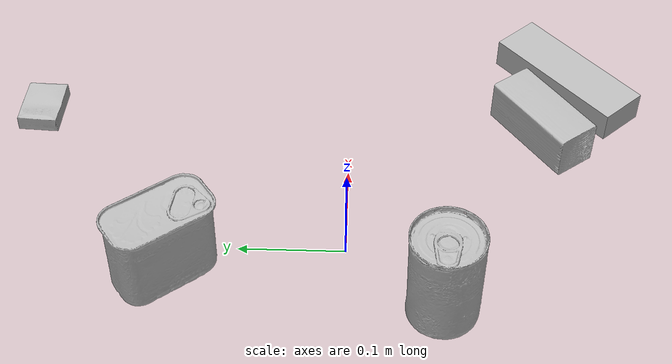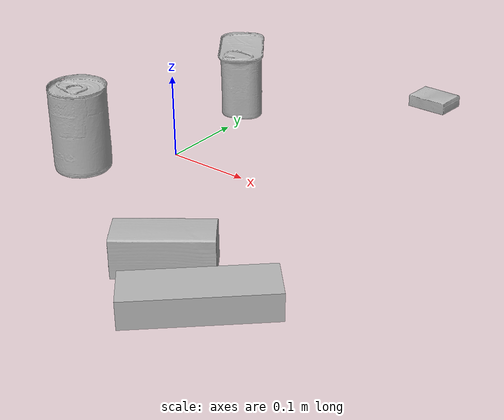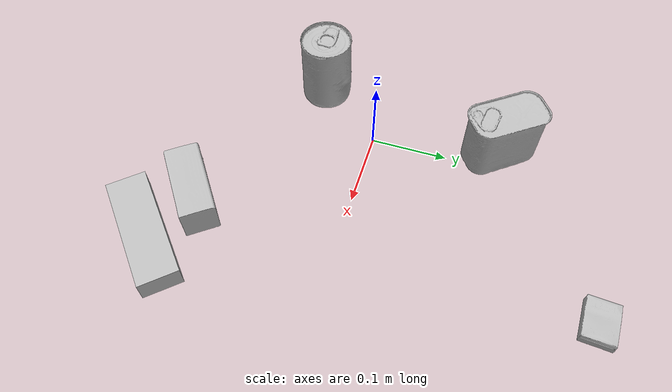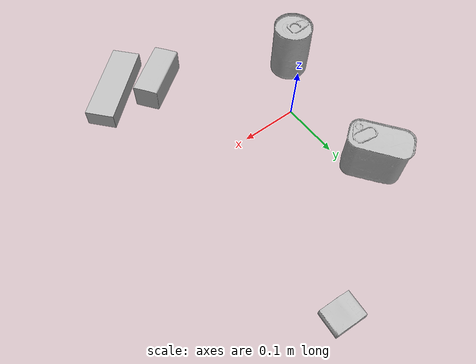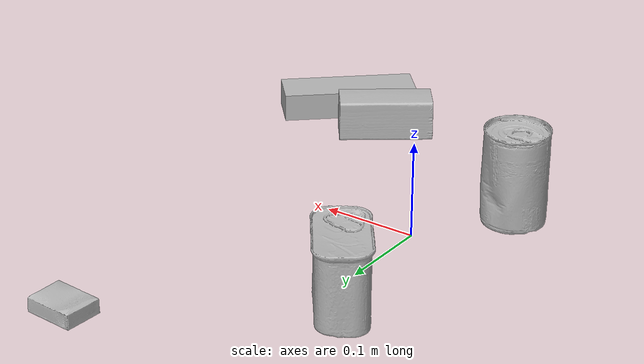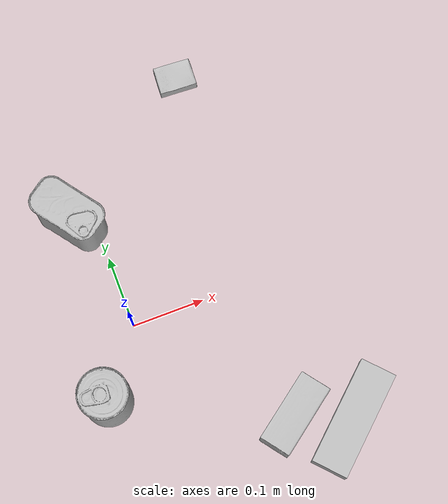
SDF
<sdf version="1.4">
  <world name="default">
    <light name="light1" type="point">
      <pose>0 0 1 0 0 0</pose>
      <diffuse>3 3 3 1</diffuse>
      <specular>3 3 3 1</specular>
    </light>
    <light name="light2" type="point">
      <pose>0 0.5 2 0 0 0</pose>
      <diffuse>1 1 1 1</diffuse>
      <specular>1 1 1 1</specular>
    </light>
    <light name="light3" type="point">
      <pose>0 0.5 2 0 0 0</pose>
      <diffuse>3 3 3 1</diffuse>
      <specular>3 3 3 1</specular>
    </light>
    <scene>
      <ambient>0.7 0.7 0.7</ambient>
    </scene>
    <model name="box1">
      <link name="link_box1">
        <collision name="default">
          <geometry>
            <mesh>
              <uri>model://jenga/collision_meshes/collision.obj</uri>
              <scale>1.0 1.0 1.0</scale>
            </mesh>
          </geometry>
          <surface>
            <friction>
              <ode>
                <mu>0.5</mu>
                <mu2>0.5</mu2>
              </ode>
            </friction>
          <contact>
        <ode>
            <max_vel>0</max_vel>
            <min_depth>0.0001</min_depth>
            <kp>1e8</kp>
        </ode>
    </contact></surface>
        </collision>
        <visual name="default">
          <geometry>
            <mesh>
              <uri>model://jenga/visual_meshes/visual.dae</uri>
              <scale>1.0 1.0 1.0</scale>
            </mesh>
          </geometry>
        </visual>
        <inertial>
          <mass>0.13349448144435883</mass>
          <pose>-2.502855807051674e-07 -0.00010250010382151231 -4.0923401684267446e-05 0.0 -7.342153480750062e-07 0.0</pose>
          <inertia>
            <ixx>3.694116e-05</ixx>
            <iyy>0.0002503123</iyy>
            <izz>0.00026722968</izz>
            <ixy>0</ixy>
            <ixz>0</ixz>
            <iyz>0</iyz>
          </inertia>
        </inertial>
      </link>
      <pose>0.22859710454940796 -0.22303538024425507 0.01499999687075615 -6.8426810915812135e-09 2.970616779368064e-09 -2.4045569325482594</pose>
    </model>
    <model name="box2">
      <link name="link_box2">
        <collision name="default">
          <geometry>
            <mesh>
              <uri>model://cracker_box/collision_meshes/collision.obj</uri>
              <scale>0.25 0.25 0.25</scale>
            </mesh>
          </geometry>
          <surface>
            <friction>
              <ode>
                <mu>0.5</mu>
                <mu2>0.5</mu2>
              </ode>
            </friction>
          <contact>
        <ode>
            <max_vel>0</max_vel>
            <min_depth>0.0001</min_depth>
            <kp>1e8</kp>
        </ode>
    </contact></surface>
        </collision>
        <visual name="default">
          <geometry>
            <mesh>
              <uri>model://cracker_box/visual_meshes/visual.dae</uri>
              <scale>0.25 0.25 0.25</scale>
            </mesh>
          </geometry>
        </visual>
        <inertial>
          <mass>0.02145323157310486</mass>
          <pose>0.00023660292208660394 6.358561950037256e-05 -0.00042573839891701937 -0.00031620765701486096 -0.011106487737550933 0.0025467954675071156</pose>
          <inertia>
            <ixx>3.4104648e-06</ixx>
            <iyy>5.631348e-06</iyy>
            <izz>8.036451e-06</izz>
            <ixy>0</ixy>
            <ixz>0</ixz>
            <iyz>0</iyz>
          </inertia>
        </inertial>
      </link>
      <pose>0.17587418854236603 0.3130311667919159 0.009096024557948112 -0.014050423792418392 -0.005016620191944778 -0.06259069980544943</pose>
    </model>
    <model name="box3">
      <link name="link_box3">
        <collision name="default">
          <geometry>
            <mesh>
              <uri>model://wood_block/collision_meshes/collision.obj</uri>
              <scale>0.5 0.5 0.5</scale>
            </mesh>
          </geometry>
          <surface>
            <friction>
              <ode>
                <mu>0.5</mu>
                <mu2>0.5</mu2>
              </ode>
            </friction>
          <contact>
        <ode>
            <max_vel>0</max_vel>
            <min_depth>0.0001</min_depth>
            <kp>1e8</kp>
        </ode>
    </contact></surface>
        </collision>
        <visual name="default">
          <geometry>
            <mesh>
              <uri>model://wood_block/visual_meshes/visual.dae</uri>
              <scale>0.5 0.5 0.5</scale>
            </mesh>
          </geometry>
        </visual>
        <inertial>
          <mass>0.16313479840755463</mass>
          <pose>-2.9066577553749084e-06 -0.000285404734313488 0.00013204291462898254 -0.05221116552051519 -0.005192696094342747 -0.006861377806143115</pose>
          <inertia>
            <ixx>5.457476e-05</ixx>
            <iyy>0.00017240169</iyy>
            <izz>0.00017175681</izz>
            <ixy>0</ixy>
            <ixz>0</ixz>
            <iyz>0</iyz>
          </inertia>
        </inertial>
      </link>
      <pose>0.1574135273694992 -0.19144055247306824 0.022629262879490852 -0.00520833769384709 0.005718693304162865 -2.5004424004494563</pose>
    </model>
    <model name="can1">
      <link name="link_can1">
        <collision name="default">
          <geometry>
            <mesh>
              <uri>model://potted_meat_can/collision_meshes/collision.obj</uri>
              <scale>1.0 1.0 1.0</scale>
            </mesh>
          </geometry>
          <surface>
            <friction>
              <ode>
                <mu>0.5</mu>
                <mu2>0.5</mu2>
              </ode>
            </friction>
          <contact>
        <ode>
            <max_vel>0</max_vel>
            <min_depth>0.0001</min_depth>
            <kp>1e8</kp>
        </ode>
    </contact></surface>
        </collision>
        <visual name="default">
          <geometry>
            <mesh>
              <uri>model://potted_meat_can/visual_meshes/visual.dae</uri>
              <scale>1.0 1.0 1.0</scale>
            </mesh>
          </geometry>
        </visual>
        <inertial>
          <mass>0.5782443881034851</mass>
          <pose>0.00022888134117238224 -5.989118290017359e-05 -0.0006367441383190453 -0.028093373189925445 -0.007232601430987569 0.015406267190211613</pose>
          <inertia>
            <ixx>0.0007438508</ixx>
            <iyy>0.00045194585</iyy>
            <izz>0.0005410098</izz>
            <ixy>0</ixy>
            <ixz>0</ixz>
            <iyz>0</iyz>
          </inertia>
        </inertial>
      </link>
      <pose>-0.02855655737221241 0.16387149691581726 0.042128000408411026 -3.946860860706922e-08 -2.0791290468993649e-07 0.6244903535904281</pose>
    </model>
    <model name="can2">
      <link name="link_can2">
        <collision name="default">
          <geometry>
            <mesh>
              <uri>model://tomato_soup_can/collision_meshes/collision.obj</uri>
              <scale>1.0 1.0 1.0</scale>
            </mesh>
          </geometry>
          <surface>
            <friction>
              <ode>
                <mu>0.5</mu>
                <mu2>0.5</mu2>
              </ode>
            </friction>
          <contact>
        <ode>
            <max_vel>0</max_vel>
            <min_depth>0.0001</min_depth>
            <kp>1e8</kp>
        </ode>
    </contact></surface>
        </collision>
        <visual name="default">
          <geometry>
            <mesh>
              <uri>model://tomato_soup_can/visual_meshes/visual.dae</uri>
              <scale>1.0 1.0 1.0</scale>
            </mesh>
          </geometry>
        </visual>
        <inertial>
          <mass>0.191082164645195</mass>
          <pose>0.00012652273289859295 0.00010805522470036522 -0.0017973986687138677 0.007020071598615513 0.0004229929517945175 -0.009903241323856832</pose>
          <inertia>
            <ixx>0.0002095054</ixx>
            <iyy>0.00020829454</iyy>
            <izz>0.0001085847</izz>
            <ixy>0</ixy>
            <ixz>0</ixz>
            <iyz>0</iyz>
          </inertia>
        </inertial>
      </link>
      <pose>-0.06550310552120209 -0.08666547387838364 0.05127401649951935 -2.697720715063538e-07 -3.096190458126267e-07 -1.9173572258626526</pose>
    </model>
  <physics type="ode">
      <max_contacts>50</max_contacts>
      <ode>
        <solver>
          <type>quick</type>
          <iters>75</iters>
        </solver>
        <constraints>
          <contact_max_correcting_vel>0</contact_max_correcting_vel>
          <contact_surface_layer>0</contact_surface_layer>
        </constraints>
      </ode>
    </physics></world>
</sdf>
